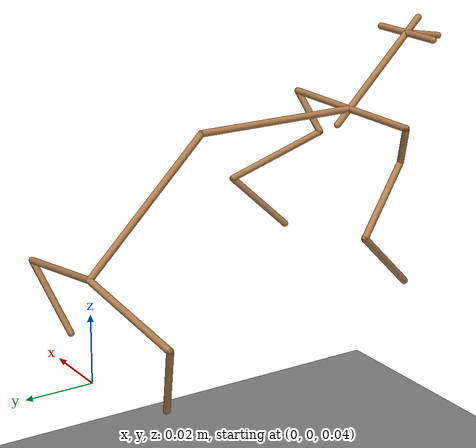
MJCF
<mujoco model="simple_rodent">
  <compiler angle="degree"/>
  <asset>
    <material name="self" rgba=".7 .5 .3 1"/>
  </asset>

  <default>
    <joint type="hinge" limited="true" solimplimit="0 0.99 0.01" stiffness="0.1e-3" armature=".1e-3" damping=".01e-3" range="-180 180"/>
    <geom size="0.03 .01 0" condim="3" friction="0.7 0.005 0.0001" solref="0.015 1" solimp="0.99 0.99 0.003"/>
    <general ctrllimited="true" ctrlrange="-1 1"/>
    <default class="rodent">
      <geom type="capsule" material="self" group="2" size=".001 .001"/>
    </default>
  </default>

  <worldbody>
    <light name="tracking_light" pos="0 0 7" dir="0 0 -1" mode="trackcom"/>
    <camera name="back" pos="0 3 1.4" xyaxes="-1 0 0 0 -1 2" mode="trackcom"/>
    <camera name="side" pos="-3 0 1.4" xyaxes="0 -1 0 1 0 2" mode="trackcom"/>
    <camera name="front_side" pos="-2 -2 0.5" xyaxes="0.5 -0.5 0 0.1 0.1 1"  mode="trackcom"/>
    <geom name="floor" type="plane" size="1 1 .1"/>
    <body name="root" pos="0 0 70e-3" euler="135 90 0" childclass="rodent">
      <freejoint name="SpineR"/>
      <camera name="bodycam" pos="0 .3 .1" xyaxes="-1 0 0 0 1 0" fovy="80"/>
      <body name="SpineR">
        <body name="LFemur" pos="0 0 0" euler="-90 -30 10">
          <joint name="LFemur_rx" axis="1 0 0"/>
          <joint name="LFemur_ry" axis="0 1 0"/>
          <joint name="LFemur_rz" axis="0 0 1"/>
          <geom name="LFemur" size="1e-3 20e-3" pos="0 20e-3 0" euler="90 0 0"/>
          <body name="LShin" pos="0 40e-3 0" euler="10 0 -75">
            <joint name="LShin" axis="1 0 0"/>
            <geom name="LShin" pos="0 -12e-3 0" size=".001 12e-3" euler="90 0 0"/>
          </body>
        </body>
        <body name="RFemur" pos="0 0 0" euler="90 30 10">
          <joint name="RFemur_rx" axis="1 0 0"/>
          <joint name="RFemur_ry" axis="0 1 0"/>
          <joint name="RFemur_rz" axis="0 0 1"/>
          <geom name="RFemur" size="1e-3 20e-3" pos="0 20e-3 0" euler="90 0 0"/>
          <body name="RShin" pos="0 40e-3 0" euler="10 0 -75">
            <joint name="RShin"/>
            <geom name="RShin" pos="0 -12e-3 0" size=".001 12e-3" euler="90 0 0"/>
          </body>
        </body>
        <geom name="SpineR" size="1e-3 25e-3" pos="0 25e-3 0"  euler="90 0 0"/>
        <body name="SpineF" pos="0 50e-3 0" euler="-180 0 135">
          <joint name="SpineF"/>
          <geom name="SpineF" size="1e-3 25e-3" pos="0 25e-3 0"  euler="90 0 0"/>
          <body name="Neck" pos="0 50e-3 0" euler="-90 -90 90">
            <joint name="Neck_rx" axis="1 0 0"/>
            <joint name="Neck_rz" axis="0 0 1"/>
            <geom name="Neck" size="1e-3 20e-3" pos="0 -10e-3 10e-3"  euler="45 0 0"/>
            <body name="Skull1" pos="0 -20e-3 20e-3" euler="10 0 0">
              <joint name="Skull1"/>
              <geom name="Skull1" size=".001 6e-3" pos="0 -6e-3 0" euler="90 0 0"/>
            </body>
            <body name="Skull2" pos="0 -20e-3 20e-3" euler="180 0 90">
              <joint name="Skull2"/>
              <geom name="Skull2" size=".001 6e-3" pos="0 -6e-3 0" euler="90 0 0"/>
            </body>
            <body name="Skull3" pos="0 -20e-3 20e-3" euler="0 0 -90">
              <joint name="Skull3"/>
              <geom name="Skull3" size=".001 6e-3" pos="0 -6e-3 0" euler="90 0 0"/>
            </body>
          </body>
          <body name="LScap" pos="0 50e-3 0" euler="90 -30 -90">
            <joint name="LScap"/>
            <geom name="LScap" size=".001 13e-3" pos="13e-3 0 0" euler="90 90 0"/>
            <body name="LScap_2" pos="26e-3 0 0" euler="20 -60 70">
              <joint name="LScap_2"/>
              <geom name="LScap_2" size=".001 7e-3" pos="0 7e-3 0" euler="90 0 0"/>
              <body name="LHumerus" pos="0 14e-3 0" euler="0 20 -90">
                <joint name="LHumerus_rz" axis="0 0 1"/>
                <joint name="LHumerus_ry" axis="0 1 0"/>
                <joint name="LHumerus_rx" axis="1 0 0"/>
                <geom name="LHumerus" size=".001 15e-3" pos="0 15e-3 0" euler="90 0 0"/>
                <body name="LArm" pos="0 30e-3 0" euler="0 -30 -75">
                  <joint name="LArm"/>
                  <geom name="LArm" pos="0 -12e-3 0" size=".001 12e-3" euler="90 0 0"/>
                </body>
              </body>
            </body>
          </body>
          <body name="RScap" pos="0 50e-3 0" euler="-90 30 -90">
            <joint name="RScap"/>
            <geom name="RScap" size=".001 13e-3" pos="13e-3 0 0" euler="90 90 0"/>
            <body name="RScap_2" pos="26e-3 0 0" euler="-20 60 70">
              <joint name="RScap_2"/>
              <geom name="RScap_2" size=".001 7e-3" pos="0 7e-3 0" euler="90 0 0"/>
              <body name="RHumerus" pos="0 14e-3 0" euler="0 -20 -90">
                <joint name="RHumerus_rz" axis="0 0 1"/>
                <joint name="RHumerus_ry" axis="0 1 0"/>
                <joint name="RHumerus_rx" axis="1 0 0"/>
                <geom name="RHumerus" size=".001 15e-3" pos="0 15e-3 0" euler="90 0 0"/>
                <body name="RArm" pos="0 30e-3 0" euler="0 30 -75">
                  <joint name="RArm"/>
                  <geom name="RArm" pos="0 -12e-3 0" size=".001 12e-3" euler="90 0 0"/>
                </body>
              </body>
            </body>
          </body>
        </body>
      </body>
    </body>
  </worldbody>

  <actuator>
  </actuator>

  <sensor>
  </sensor>

</mujoco>
